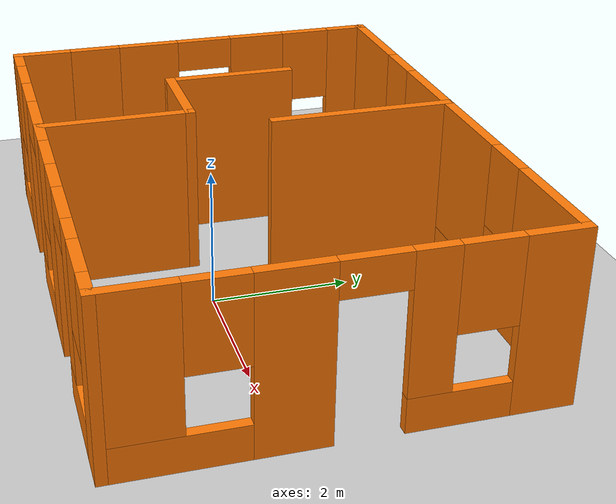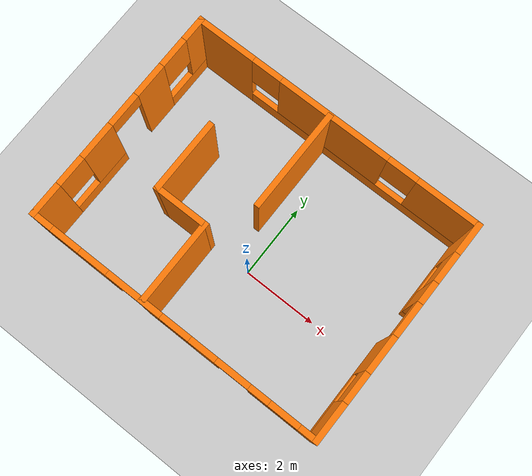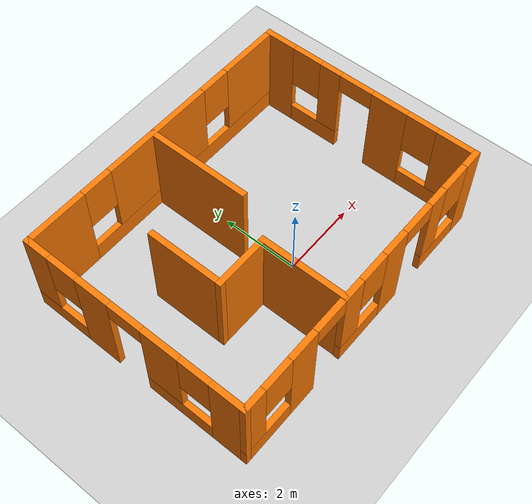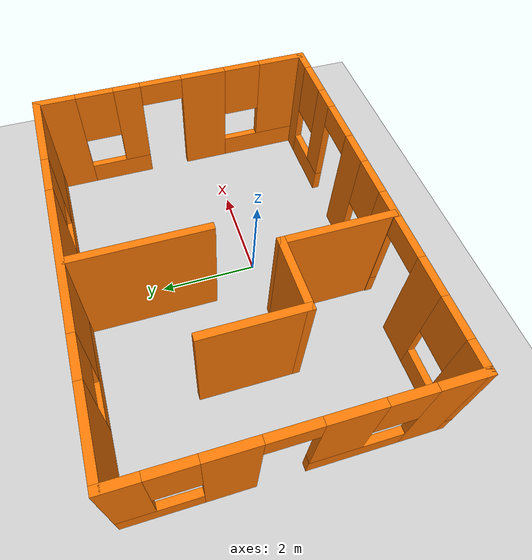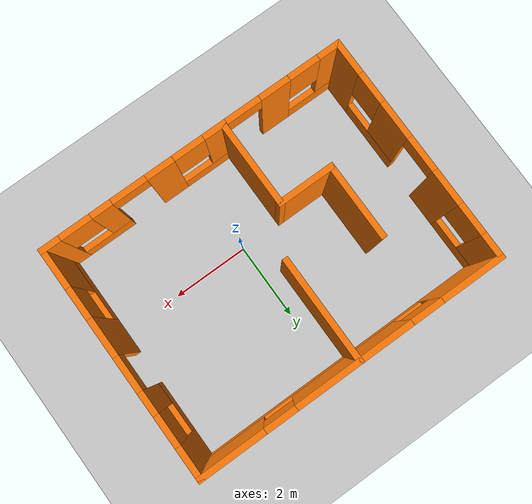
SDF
<sdf version="1.6">
 <world name="default">
  <light name="sun" type="directional">
   <pose>0 0 10 0 -0 0</pose>
   <diffuse>0.8 0.8 0.8 1</diffuse>
   <specular>0.2 0.2 0.2 1</specular>
   <attenuation>
    <range>1000</range>
    <constant>0.9</constant>
    <linear>0.01</linear>
    <quadratic>0.001</quadratic>
   </attenuation>
   <direction>-0.5 0.1 -0.9</direction>
  </light>
  <model name="ground_plane">
   <static>1</static>
   <link name="link">
    <collision name="collision">
     <geometry><plane><normal>0 0 1</normal><size>100 100</size></plane></geometry>
     <surface><friction><ode><mu>100</mu><mu2>50</mu2></ode></friction></surface>
    </collision>
    <visual name="visual">
     <cast_shadows>0</cast_shadows>
     <geometry><plane><normal>0 0 1</normal><size>100 100</size></plane></geometry>
     <material>
      <script><uri>file://media/materials/scripts/gazebo.material</uri><name>Gazebo/Grey</name></script>
     </material>
    </visual>
   </link>
  </model>
  <gravity>0 0 -9.8</gravity>
  <magnetic_field>6e-06 2.3e-05 -4.2e-05</magnetic_field>
  <atmosphere type="adiabatic"/>
  <physics name="default_physics" default="0" type="ode">
   <max_step_size>0.001</max_step_size>
   <real_time_factor>1</real_time_factor>
   <real_time_update_rate>1000</real_time_update_rate>
  </physics>
  <scene><ambient>0.4 0.4 0.4 1</ambient><background>0.7 0.7 0.7 1</background><shadows>1</shadows></scene>
  <spherical_coordinates>
   <surface_model>EARTH_WGS84</surface_model>
   <latitude_deg>0</latitude_deg>
   <longitude_deg>0</longitude_deg>
   <elevation>0</elevation>
   <heading_deg>0</heading_deg>
  </spherical_coordinates>
  <model name="mywold">
   <pose>-0.3363 0.745488 0 0 -0 0</pose>
   <link name="Wall_0">
    <pose>-3.925 0 0 0 -0 1.5708</pose>
    <visual name="Wall_0_Visual_0">
     <pose>-2.54206 0 1.25 0 -0 0</pose>
     <geometry><box><size>0.915881 0.15 2.5</size></box></geometry>
     <material>
      <script><uri>file://media/materials/scripts/gazebo.material</uri><name>Gazebo/Grey</name></script>
      <ambient>0.996078 0.47451 0.0196078 1</ambient>
     </material>
     <meta><layer>0</layer></meta>
    </visual>
    <collision name="Wall_0_Collision_0">
     <geometry><box><size>0.915881 0.15 2.5</size></box></geometry>
     <pose>-2.54206 0 1.25 0 -0 0</pose>
    </collision>
    <visual name="Wall_0_Visual_1">
     <pose>1.05257 0 1.25 0 -0 0</pose>
     <geometry><box><size>0.913386 0.15 2.5</size></box></geometry>
     <material>
      <script><uri>file://media/materials/scripts/gazebo.material</uri><name>Gazebo/Grey</name></script>
      <ambient>0.996078 0.47451 0.0196078 1</ambient>
     </material>
     <meta><layer>0</layer></meta>
    </visual>
    <collision name="Wall_0_Collision_1">
     <geometry><box><size>0.913386 0.15 2.5</size></box></geometry>
     <pose>1.05257 0 1.25 0 -0 0</pose>
    </collision>
    <visual name="Wall_0_Visual_2">
     <pose>-1.19412 0 0.25 0 -0 0</pose>
     <geometry><box><size>1.78 0.15 0.5</size></box></geometry>
     <material>
      <script><uri>file://media/materials/scripts/gazebo.material</uri><name>Gazebo/Grey</name></script>
      <ambient>0.996078 0.47451 0.0196078 1</ambient>
     </material>
     <meta><layer>0</layer></meta>
    </visual>
    <collision name="Wall_0_Collision_2">
     <geometry><box><size>1.78 0.15 0.5</size></box></geometry>
     <pose>-1.19412 0 0.25 0 -0 0</pose>
    </collision>
    <visual name="Wall_0_Visual_3">
     <pose>2.25463 0 0.25 0 -0 0</pose>
     <geometry><box><size>1.49073 0.15 0.5</size></box></geometry>
     <material>
      <script><uri>file://media/materials/scripts/gazebo.material</uri><name>Gazebo/Grey</name></script>
      <ambient>0.996078 0.47451 0.0196078 1</ambient>
     </material>
     <meta><layer>0</layer></meta>
    </visual>
    <collision name="Wall_0_Collision_3">
     <geometry><box><size>1.49073 0.15 0.5</size></box></geometry>
     <pose>2.25463 0 0.25 0 -0 0</pose>
    </collision>
    <visual name="Wall_0_Visual_4">
     <pose>-0.79412 0 1.5 0 -0 0</pose>
     <geometry><box><size>0.98 0.15 2</size></box></geometry>
     <material>
      <script><uri>file://media/materials/scripts/gazebo.material</uri><name>Gazebo/Grey</name></script>
      <ambient>0.996078 0.47451 0.0196078 1</ambient>
     </material>
     <meta><layer>0</layer></meta>
    </visual>
    <collision name="Wall_0_Collision_4">
     <geometry><box><size>0.98 0.15 2</size></box></geometry>
     <pose>-0.79412 0 1.5 0 -0 0</pose>
    </collision>
    <visual name="Wall_0_Visual_5">
     <pose>-0.79412 0 1.5 0 -0 0</pose>
     <geometry><box><size>0.98 0.15 2</size></box></geometry>
     <material>
      <script><uri>file://media/materials/scripts/gazebo.material</uri><name>Gazebo/Grey</name></script>
      <ambient>0.996078 0.47451 0.0196078 1</ambient>
     </material>
     <meta><layer>0</layer></meta>
    </visual>
    <collision name="Wall_0_Collision_5">
     <geometry><box><size>0.98 0.15 2</size></box></geometry>
     <pose>-0.79412 0 1.5 0 -0 0</pose>
    </collision>
    <visual name="Wall_0_Visual_6">
     <pose>2.65463 0 1.5 0 -0 0</pose>
     <geometry><box><size>0.690734 0.15 2</size></box></geometry>
     <material>
      <script><uri>file://media/materials/scripts/gazebo.material</uri><name>Gazebo/Grey</name></script>
      <ambient>0.996078 0.47451 0.0196078 1</ambient>
     </material>
     <meta><layer>0</layer></meta>
    </visual>
    <collision name="Wall_0_Collision_6">
     <geometry><box><size>0.690734 0.15 2</size></box></geometry>
     <pose>2.65463 0 1.5 0 -0 0</pose>
    </collision>
    <visual name="Wall_0_Visual_7">
     <pose>-1.68412 0 1.9 0 -0 0</pose>
     <geometry><box><size>0.8 0.15 1.2</size></box></geometry>
     <material>
      <script><uri>file://media/materials/scripts/gazebo.material</uri><name>Gazebo/Grey</name></script>
      <ambient>0.996078 0.47451 0.0196078 1</ambient>
     </material>
     <meta><layer>0</layer></meta>
    </visual>
    <collision name="Wall_0_Collision_7">
     <geometry><box><size>0.8 0.15 1.2</size></box></geometry>
     <pose>-1.68412 0 1.9 0 -0 0</pose>
    </collision>
    <visual name="Wall_0_Visual_8">
     <pose>1.90927 0 1.9 0 -0 0</pose>
     <geometry><box><size>0.8 0.15 1.2</size></box></geometry>
     <material>
      <script><uri>file://media/materials/scripts/gazebo.material</uri><name>Gazebo/Grey</name></script>
      <ambient>0.996078 0.47451 0.0196078 1</ambient>
     </material>
     <meta><layer>0</layer></meta>
    </visual>
    <collision name="Wall_0_Collision_8">
     <geometry><box><size>0.8 0.15 1.2</size></box></geometry>
     <pose>1.90927 0 1.9 0 -0 0</pose>
    </collision>
    <visual name="Wall_0_Visual_9">
     <pose>0.14588 0 2.25 0 -0 0</pose>
     <geometry><box><size>0.9 0.15 0.5</size></box></geometry>
     <material>
      <script><uri>file://media/materials/scripts/gazebo.material</uri><name>Gazebo/Grey</name></script>
      <ambient>0.996078 0.47451 0.0196078 1</ambient>
     </material>
     <meta><layer>0</layer></meta>
    </visual>
    <collision name="Wall_0_Collision_9">
     <geometry><box><size>0.9 0.15 0.5</size></box></geometry>
     <pose>0.14588 0 2.25 0 -0 0</pose>
    </collision>
    <visual name="Wall_0_Visual_10">
     <pose>0.14588 0 2.25 0 -0 0</pose>
     <geometry><box><size>0.9 0.15 0.5</size></box></geometry>
     <material>
      <script><uri>file://media/materials/scripts/gazebo.material</uri><name>Gazebo/Grey</name></script>
      <ambient>0.996078 0.47451 0.0196078 1</ambient>
     </material>
     <meta><layer>0</layer></meta>
    </visual>
    <collision name="Wall_0_Collision_10">
     <geometry><box><size>0.9 0.15 0.5</size></box></geometry>
     <pose>0.14588 0 2.25 0 -0 0</pose>
    </collision>
   </link>
   <link name="Wall_1">
    <pose>0 2.925 0 0 -0 0</pose>
    <visual name="Wall_1_Visual_0">
     <pose>-3.17832 0 1.25 0 -0 0</pose>
     <geometry><box><size>1.64336 0.15 2.5</size></box></geometry>
     <material>
      <script><uri>file://media/materials/scripts/gazebo.material</uri><name>Gazebo/Grey</name></script>
      <ambient>0.996078 0.47451 0.0196078 1</ambient>
     </material>
     <meta><layer>0</layer></meta>
    </visual>
    <collision name="Wall_1_Collision_0">
     <geometry><box><size>1.64336 0.15 2.5</size></box></geometry>
     <pose>-3.17832 0 1.25 0 -0 0</pose>
    </collision>
    <visual name="Wall_1_Visual_1">
     <pose>0.821679 0 0.25 0 -0 0</pose>
     <geometry><box><size>6.35664 0.15 0.5</size></box></geometry>
     <material>
      <script><uri>file://media/materials/scripts/gazebo.material</uri><name>Gazebo/Grey</name></script>
      <ambient>0.996078 0.47451 0.0196078 1</ambient>
     </material>
     <meta><layer>0</layer></meta>
    </visual>
    <collision name="Wall_1_Collision_1">
     <geometry><box><size>6.35664 0.15 0.5</size></box></geometry>
     <pose>0.821679 0 0.25 0 -0 0</pose>
    </collision>
    <visual name="Wall_1_Visual_2">
     <pose>-0.041479 0 1.5 0 -0 0</pose>
     <geometry><box><size>3.03032 0.15 2</size></box></geometry>
     <material>
      <script><uri>file://media/materials/scripts/gazebo.material</uri><name>Gazebo/Grey</name></script>
      <ambient>0.996078 0.47451 0.0196078 1</ambient>
     </material>
     <meta><layer>0</layer></meta>
    </visual>
    <collision name="Wall_1_Collision_2">
     <geometry><box><size>3.03032 0.15 2</size></box></geometry>
     <pose>-0.041479 0 1.5 0 -0 0</pose>
    </collision>
    <visual name="Wall_1_Visual_3">
     <pose>3.13684 0 1.5 0 -0 0</pose>
     <geometry><box><size>1.72632 0.15 2</size></box></geometry>
     <material>
      <script><uri>file://media/materials/scripts/gazebo.material</uri><name>Gazebo/Grey</name></script>
      <ambient>0.996078 0.47451 0.0196078 1</ambient>
     </material>
     <meta><layer>0</layer></meta>
    </visual>
    <collision name="Wall_1_Collision_3">
     <geometry><box><size>1.72632 0.15 2</size></box></geometry>
     <pose>3.13684 0 1.5 0 -0 0</pose>
    </collision>
    <visual name="Wall_1_Visual_4">
     <pose>-1.95664 0 1.9 0 -0 0</pose>
     <geometry><box><size>0.8 0.15 1.2</size></box></geometry>
     <material>
      <script><uri>file://media/materials/scripts/gazebo.material</uri><name>Gazebo/Grey</name></script>
      <ambient>0.996078 0.47451 0.0196078 1</ambient>
     </material>
     <meta><layer>0</layer></meta>
    </visual>
    <collision name="Wall_1_Collision_4">
     <geometry><box><size>0.8 0.15 1.2</size></box></geometry>
     <pose>-1.95664 0 1.9 0 -0 0</pose>
    </collision>
    <visual name="Wall_1_Visual_5">
     <pose>1.87368 0 1.9 0 -0 0</pose>
     <geometry><box><size>0.8 0.15 1.2</size></box></geometry>
     <material>
      <script><uri>file://media/materials/scripts/gazebo.material</uri><name>Gazebo/Grey</name></script>
      <ambient>0.996078 0.47451 0.0196078 1</ambient>
     </material>
     <meta><layer>0</layer></meta>
    </visual>
    <collision name="Wall_1_Collision_5">
     <geometry><box><size>0.8 0.15 1.2</size></box></geometry>
     <pose>1.87368 0 1.9 0 -0 0</pose>
    </collision>
   </link>
   <link name="Wall_2">
    <pose>3.925 0 0 0 0 -1.5708</pose>
    <visual name="Wall_2_Visual_0">
     <pose>-2.56294 0 1.25 0 -0 0</pose>
     <geometry><box><size>0.874119 0.15 2.5</size></box></geometry>
     <material>
      <script><uri>file://media/materials/scripts/gazebo.material</uri><name>Gazebo/Grey</name></script>
      <ambient>0.996078 0.47451 0.0196078 1</ambient>
     </material>
     <meta><layer>0</layer></meta>
    </visual>
    <collision name="Wall_2_Collision_0">
     <geometry><box><size>0.874119 0.15 2.5</size></box></geometry>
     <pose>-2.56294 0 1.25 0 -0 0</pose>
    </collision>
    <visual name="Wall_2_Visual_1">
     <pose>0.644119 0 1.25 0 -0 0</pose>
     <geometry><box><size>0.98 0.15 2.5</size></box></geometry>
     <material>
      <script><uri>file://media/materials/scripts/gazebo.material</uri><name>Gazebo/Grey</name></script>
      <ambient>0.996078 0.47451 0.0196078 1</ambient>
     </material>
     <meta><layer>0</layer></meta>
    </visual>
    <collision name="Wall_2_Collision_1">
     <geometry><box><size>0.98 0.15 2.5</size></box></geometry>
     <pose>0.644119 0 1.25 0 -0 0</pose>
    </collision>
    <visual name="Wall_2_Visual_2">
     <pose>-1.43588 0 0.25 0 -0 0</pose>
     <geometry><box><size>1.38 0.15 0.5</size></box></geometry>
     <material>
      <script><uri>file://media/materials/scripts/gazebo.material</uri><name>Gazebo/Grey</name></script>
      <ambient>0.996078 0.47451 0.0196078 1</ambient>
     </material>
     <meta><layer>0</layer></meta>
    </visual>
    <collision name="Wall_2_Collision_2">
     <geometry><box><size>1.38 0.15 0.5</size></box></geometry>
     <pose>-1.43588 0 0.25 0 -0 0</pose>
    </collision>
    <visual name="Wall_2_Visual_3">
     <pose>2.06706 0 0.25 0 -0 0</pose>
     <geometry><box><size>1.86588 0.15 0.5</size></box></geometry>
     <material>
      <script><uri>file://media/materials/scripts/gazebo.material</uri><name>Gazebo/Grey</name></script>
      <ambient>0.996078 0.47451 0.0196078 1</ambient>
     </material>
     <meta><layer>0</layer></meta>
    </visual>
    <collision name="Wall_2_Collision_3">
     <geometry><box><size>1.86588 0.15 0.5</size></box></geometry>
     <pose>2.06706 0 0.25 0 -0 0</pose>
    </collision>
    <visual name="Wall_2_Visual_4">
     <pose>-1.03588 0 1.5 0 -0 0</pose>
     <geometry><box><size>0.58 0.15 2</size></box></geometry>
     <material>
      <script><uri>file://media/materials/scripts/gazebo.material</uri><name>Gazebo/Grey</name></script>
      <ambient>0.996078 0.47451 0.0196078 1</ambient>
     </material>
     <meta><layer>0</layer></meta>
    </visual>
    <collision name="Wall_2_Collision_4">
     <geometry><box><size>0.58 0.15 2</size></box></geometry>
     <pose>-1.03588 0 1.5 0 -0 0</pose>
    </collision>
    <visual name="Wall_2_Visual_5">
     <pose>-1.03588 0 1.5 0 -0 0</pose>
     <geometry><box><size>0.58 0.15 2</size></box></geometry>
     <material>
      <script><uri>file://media/materials/scripts/gazebo.material</uri><name>Gazebo/Grey</name></script>
      <ambient>0.996078 0.47451 0.0196078 1</ambient>
     </material>
     <meta><layer>0</layer></meta>
    </visual>
    <collision name="Wall_2_Collision_5">
     <geometry><box><size>0.58 0.15 2</size></box></geometry>
     <pose>-1.03588 0 1.5 0 -0 0</pose>
    </collision>
    <visual name="Wall_2_Visual_6">
     <pose>2.46706 0 1.5 0 -0 0</pose>
     <geometry><box><size>1.06588 0.15 2</size></box></geometry>
     <material>
      <script><uri>file://media/materials/scripts/gazebo.material</uri><name>Gazebo/Grey</name></script>
      <ambient>0.996078 0.47451 0.0196078 1</ambient>
     </material>
     <meta><layer>0</layer></meta>
    </visual>
    <collision name="Wall_2_Collision_6">
     <geometry><box><size>1.06588 0.15 2</size></box></geometry>
     <pose>2.46706 0 1.5 0 -0 0</pose>
    </collision>
    <visual name="Wall_2_Visual_7">
     <pose>-1.72588 0 1.9 0 -0 0</pose>
     <geometry><box><size>0.8 0.15 1.2</size></box></geometry>
     <material>
      <script><uri>file://media/materials/scripts/gazebo.material</uri><name>Gazebo/Grey</name></script>
      <ambient>0.996078 0.47451 0.0196078 1</ambient>
     </material>
     <meta><layer>0</layer></meta>
    </visual>
    <collision name="Wall_2_Collision_7">
     <geometry><box><size>0.8 0.15 1.2</size></box></geometry>
     <pose>-1.72588 0 1.9 0 -0 0</pose>
    </collision>
    <visual name="Wall_2_Visual_8">
     <pose>1.53412 0 1.9 0 -0 0</pose>
     <geometry><box><size>0.8 0.15 1.2</size></box></geometry>
     <material>
      <script><uri>file://media/materials/scripts/gazebo.material</uri><name>Gazebo/Grey</name></script>
      <ambient>0.996078 0.47451 0.0196078 1</ambient>
     </material>
     <meta><layer>0</layer></meta>
    </visual>
    <collision name="Wall_2_Collision_8">
     <geometry><box><size>0.8 0.15 1.2</size></box></geometry>
     <pose>1.53412 0 1.9 0 -0 0</pose>
    </collision>
    <visual name="Wall_2_Visual_9">
     <pose>-0.295881 0 2.25 0 -0 0</pose>
     <geometry><box><size>0.9 0.15 0.5</size></box></geometry>
     <material>
      <script><uri>file://media/materials/scripts/gazebo.material</uri><name>Gazebo/Grey</name></script>
      <ambient>0.996078 0.47451 0.0196078 1</ambient>
     </material>
     <meta><layer>0</layer></meta>
    </visual>
    <collision name="Wall_2_Collision_9">
     <geometry><box><size>0.9 0.15 0.5</size></box></geometry>
     <pose>-0.295881 0 2.25 0 -0 0</pose>
    </collision>
    <visual name="Wall_2_Visual_10">
     <pose>-0.295881 0 2.25 0 -0 0</pose>
     <geometry><box><size>0.9 0.15 0.5</size></box></geometry>
     <material>
      <script><uri>file://media/materials/scripts/gazebo.material</uri><name>Gazebo/Grey</name></script>
      <ambient>0.996078 0.47451 0.0196078 1</ambient>
     </material>
     <meta><layer>0</layer></meta>
    </visual>
    <collision name="Wall_2_Collision_10">
     <geometry><box><size>0.9 0.15 0.5</size></box></geometry>
     <pose>-0.295881 0 2.25 0 -0 0</pose>
    </collision>
   </link>
   <link name="Wall_3">
    <pose>0 -2.925 0 0 -0 3.14159</pose>
    <visual name="Wall_3_Visual_0">
     <pose>-3.73798 0 1.25 0 -0 0</pose>
     <geometry><box><size>0.524035 0.15 2.5</size></box></geometry>
     <material>
      <script><uri>file://media/materials/scripts/gazebo.material</uri><name>Gazebo/Grey</name></script>
      <ambient>0.996078 0.47451 0.0196078 1</ambient>
     </material>
     <meta><layer>0</layer></meta>
    </visual>
    <collision name="Wall_3_Collision_0">
     <geometry><box><size>0.524035 0.15 2.5</size></box></geometry>
     <pose>-3.73798 0 1.25 0 -0 0</pose>
    </collision>
    <visual name="Wall_3_Visual_1">
     <pose>-0.875965 0 1.25 0 -0 0</pose>
     <geometry><box><size>0.72 0.15 2.5</size></box></geometry>
     <material>
      <script><uri>file://media/materials/scripts/gazebo.material</uri><name>Gazebo/Grey</name></script>
      <ambient>0.996078 0.47451 0.0196078 1</ambient>
     </material>
     <meta><layer>0</layer></meta>
    </visual>
    <collision name="Wall_3_Collision_1">
     <geometry><box><size>0.72 0.15 2.5</size></box></geometry>
     <pose>-0.875965 0 1.25 0 -0 0</pose>
    </collision>
    <visual name="Wall_3_Visual_2">
     <pose>2.18904 0 1.25 0 -0 0</pose>
     <geometry><box><size>0.79 0.15 2.5</size></box></geometry>
     <material>
      <script><uri>file://media/materials/scripts/gazebo.material</uri><name>Gazebo/Grey</name></script>
      <ambient>0.996078 0.47451 0.0196078 1</ambient>
     </material>
     <meta><layer>0</layer></meta>
    </visual>
    <collision name="Wall_3_Collision_2">
     <geometry><box><size>0.79 0.15 2.5</size></box></geometry>
     <pose>2.18904 0 1.25 0 -0 0</pose>
    </collision>
    <visual name="Wall_3_Visual_3">
     <pose>-2.80597 0 0.25 0 -0 0</pose>
     <geometry><box><size>1.34 0.15 0.5</size></box></geometry>
     <material>
      <script><uri>file://media/materials/scripts/gazebo.material</uri><name>Gazebo/Grey</name></script>
      <ambient>0.996078 0.47451 0.0196078 1</ambient>
     </material>
     <meta><layer>0</layer></meta>
    </visual>
    <collision name="Wall_3_Collision_3">
     <geometry><box><size>1.34 0.15 0.5</size></box></geometry>
     <pose>-2.80597 0 0.25 0 -0 0</pose>
    </collision>
    <visual name="Wall_3_Visual_4">
     <pose>0.189035 0 0.25 0 -0 0</pose>
     <geometry><box><size>1.41 0.15 0.5</size></box></geometry>
     <material>
      <script><uri>file://media/materials/scripts/gazebo.material</uri><name>Gazebo/Grey</name></script>
      <ambient>0.996078 0.47451 0.0196078 1</ambient>
     </material>
     <meta><layer>0</layer></meta>
    </visual>
    <collision name="Wall_3_Collision_4">
     <geometry><box><size>1.41 0.15 0.5</size></box></geometry>
     <pose>0.189035 0 0.25 0 -0 0</pose>
    </collision>
    <visual name="Wall_3_Visual_5">
     <pose>3.29202 0 0.25 0 -0 0</pose>
     <geometry><box><size>1.41596 0.15 0.5</size></box></geometry>
     <material>
      <script><uri>file://media/materials/scripts/gazebo.material</uri><name>Gazebo/Grey</name></script>
      <ambient>0.996078 0.47451 0.0196078 1</ambient>
     </material>
     <meta><layer>0</layer></meta>
    </visual>
    <collision name="Wall_3_Collision_5">
     <geometry><box><size>1.41596 0.15 0.5</size></box></geometry>
     <pose>3.29202 0 0.25 0 -0 0</pose>
    </collision>
    <visual name="Wall_3_Visual_6">
     <pose>-2.40597 0 1.5 0 -0 0</pose>
     <geometry><box><size>0.54 0.15 2</size></box></geometry>
     <material>
      <script><uri>file://media/materials/scripts/gazebo.material</uri><name>Gazebo/Grey</name></script>
      <ambient>0.996078 0.47451 0.0196078 1</ambient>
     </material>
     <meta><layer>0</layer></meta>
    </visual>
    <collision name="Wall_3_Collision_6">
     <geometry><box><size>0.54 0.15 2</size></box></geometry>
     <pose>-2.40597 0 1.5 0 -0 0</pose>
    </collision>
    <visual name="Wall_3_Visual_7">
     <pose>-2.40597 0 1.5 0 -0 0</pose>
     <geometry><box><size>0.54 0.15 2</size></box></geometry>
     <material>
      <script><uri>file://media/materials/scripts/gazebo.material</uri><name>Gazebo/Grey</name></script>
      <ambient>0.996078 0.47451 0.0196078 1</ambient>
     </material>
     <meta><layer>0</layer></meta>
    </visual>
    <collision name="Wall_3_Collision_7">
     <geometry><box><size>0.54 0.15 2</size></box></geometry>
     <pose>-2.40597 0 1.5 0 -0 0</pose>
    </collision>
    <visual name="Wall_3_Visual_8">
     <pose>0.589035 0 1.5 0 -0 0</pose>
     <geometry><box><size>0.61 0.15 2</size></box></geometry>
     <material>
      <script><uri>file://media/materials/scripts/gazebo.material</uri><name>Gazebo/Grey</name></script>
      <ambient>0.996078 0.47451 0.0196078 1</ambient>
     </material>
     <meta><layer>0</layer></meta>
    </visual>
    <collision name="Wall_3_Collision_8">
     <geometry><box><size>0.61 0.15 2</size></box></geometry>
     <pose>0.589035 0 1.5 0 -0 0</pose>
    </collision>
    <visual name="Wall_3_Visual_9">
     <pose>0.589035 0 1.5 0 -0 0</pose>
     <geometry><box><size>0.61 0.15 2</size></box></geometry>
     <material>
      <script><uri>file://media/materials/scripts/gazebo.material</uri><name>Gazebo/Grey</name></script>
      <ambient>0.996078 0.47451 0.0196078 1</ambient>
     </material>
     <meta><layer>0</layer></meta>
    </visual>
    <collision name="Wall_3_Collision_9">
     <geometry><box><size>0.61 0.15 2</size></box></geometry>
     <pose>0.589035 0 1.5 0 -0 0</pose>
    </collision>
    <visual name="Wall_3_Visual_10">
     <pose>3.69202 0 1.5 0 -0 0</pose>
     <geometry><box><size>0.615965 0.15 2</size></box></geometry>
     <material>
      <script><uri>file://media/materials/scripts/gazebo.material</uri><name>Gazebo/Grey</name></script>
      <ambient>0.996078 0.47451 0.0196078 1</ambient>
     </material>
     <meta><layer>0</layer></meta>
    </visual>
    <collision name="Wall_3_Collision_10">
     <geometry><box><size>0.615965 0.15 2</size></box></geometry>
     <pose>3.69202 0 1.5 0 -0 0</pose>
    </collision>
    <visual name="Wall_3_Visual_11">
     <pose>-3.07597 0 1.9 0 -0 0</pose>
     <geometry><box><size>0.8 0.15 1.2</size></box></geometry>
     <material>
      <script><uri>file://media/materials/scripts/gazebo.material</uri><name>Gazebo/Grey</name></script>
      <ambient>0.996078 0.47451 0.0196078 1</ambient>
     </material>
     <meta><layer>0</layer></meta>
    </visual>
    <collision name="Wall_3_Collision_11">
     <geometry><box><size>0.8 0.15 1.2</size></box></geometry>
     <pose>-3.07597 0 1.9 0 -0 0</pose>
    </collision>
    <visual name="Wall_3_Visual_12">
     <pose>-0.115965 0 1.9 0 -0 0</pose>
     <geometry><box><size>0.8 0.15 1.2</size></box></geometry>
     <material>
      <script><uri>file://media/materials/scripts/gazebo.material</uri><name>Gazebo/Grey</name></script>
      <ambient>0.996078 0.47451 0.0196078 1</ambient>
     </material>
     <meta><layer>0</layer></meta>
    </visual>
    <collision name="Wall_3_Collision_12">
     <geometry><box><size>0.8 0.15 1.2</size></box></geometry>
     <pose>-0.115965 0 1.9 0 -0 0</pose>
    </collision>
    <visual name="Wall_3_Visual_13">
     <pose>2.98403 0 1.9 0 -0 0</pose>
     <geometry><box><size>0.8 0.15 1.2</size></box></geometry>
     <material>
      <script><uri>file://media/materials/scripts/gazebo.material</uri><name>Gazebo/Grey</name></script>
      <ambient>0.996078 0.47451 0.0196078 1</ambient>
     </material>
     <meta><layer>0</layer></meta>
    </visual>
    <collision name="Wall_3_Collision_13">
     <geometry><box><size>0.8 0.15 1.2</size></box></geometry>
     <pose>2.98403 0 1.9 0 -0 0</pose>
    </collision>
    <visual name="Wall_3_Visual_14">
     <pose>-1.68596 0 2.25 0 -0 0</pose>
     <geometry><box><size>0.9 0.15 0.5</size></box></geometry>
     <material>
      <script><uri>file://media/materials/scripts/gazebo.material</uri><name>Gazebo/Grey</name></script>
      <ambient>0.996078 0.47451 0.0196078 1</ambient>
     </material>
     <meta><layer>0</layer></meta>
    </visual>
    <collision name="Wall_3_Collision_14">
     <geometry><box><size>0.9 0.15 0.5</size></box></geometry>
     <pose>-1.68596 0 2.25 0 -0 0</pose>
    </collision>
    <visual name="Wall_3_Visual_15">
     <pose>-1.68596 0 2.25 0 -0 0</pose>
     <geometry><box><size>0.9 0.15 0.5</size></box></geometry>
     <material>
      <script><uri>file://media/materials/scripts/gazebo.material</uri><name>Gazebo/Grey</name></script>
      <ambient>0.996078 0.47451 0.0196078 1</ambient>
     </material>
     <meta><layer>0</layer></meta>
    </visual>
    <collision name="Wall_3_Collision_15">
     <geometry><box><size>0.9 0.15 0.5</size></box></geometry>
     <pose>-1.68596 0 2.25 0 -0 0</pose>
    </collision>
    <visual name="Wall_3_Visual_16">
     <pose>1.34404 0 2.25 0 -0 0</pose>
     <geometry><box><size>0.9 0.15 0.5</size></box></geometry>
     <material>
      <script><uri>file://media/materials/scripts/gazebo.material</uri><name>Gazebo/Grey</name></script>
      <ambient>0.996078 0.47451 0.0196078 1</ambient>
     </material>
     <meta><layer>0</layer></meta>
    </visual>
    <collision name="Wall_3_Collision_16">
     <geometry><box><size>0.9 0.15 0.5</size></box></geometry>
     <pose>1.34404 0 2.25 0 -0 0</pose>
    </collision>
    <visual name="Wall_3_Visual_17">
     <pose>1.34404 0 2.25 0 -0 0</pose>
     <geometry><box><size>0.9 0.15 0.5</size></box></geometry>
     <material>
      <script><uri>file://media/materials/scripts/gazebo.material</uri><name>Gazebo/Grey</name></script>
      <ambient>0.996078 0.47451 0.0196078 1</ambient>
     </material>
     <meta><layer>0</layer></meta>
    </visual>
    <collision name="Wall_3_Collision_17">
     <geometry><box><size>0.9 0.15 0.5</size></box></geometry>
     <pose>1.34404 0 2.25 0 -0 0</pose>
    </collision>
   </link>
   <link name="Wall_5">
    <collision name="Wall_5_Collision">
     <geometry><box><size>2.25 0.15 2.5</size></box></geometry>
     <pose>0 0 1.25 0 -0 0</pose>
    </collision>
    <visual name="Wall_5_Visual">
     <pose>0 0 1.25 0 -0 0</pose>
     <geometry><box><size>2.25 0.15 2.5</size></box></geometry>
     <material>
      <script><uri>file://media/materials/scripts/gazebo.material</uri><name>Gazebo/Grey</name></script>
      <ambient>0.996078 0.47451 0.0196078 1</ambient>
     </material>
     <meta><layer>0</layer></meta>
    </visual>
    <pose>-0.807 -1.83222 0 0 -0 1.5708</pose>
   </link>
   <link name="Wall_6">
    <collision name="Wall_6_Collision">
     <geometry><box><size>1.5 0.15 2.5</size></box></geometry>
     <pose>0 0 1.25 0 -0 0</pose>
    </collision>
    <visual name="Wall_6_Visual">
     <pose>0 0 1.25 0 -0 0</pose>
     <geometry><box><size>1.5 0.15 2.5</size></box></geometry>
     <material>
      <script><uri>file://media/materials/scripts/gazebo.material</uri><name>Gazebo/Grey</name></script>
      <ambient>0.996078 0.47451 0.0196078 1</ambient>
     </material>
     <meta><layer>0</layer></meta>
    </visual>
    <pose>-1.482 -0.782225 0 0 -0 3.14159</pose>
   </link>
   <link name="Wall_7">
    <collision name="Wall_7_Collision">
     <geometry><box><size>2 0.15 2.5</size></box></geometry>
     <pose>0 0 1.25 0 -0 0</pose>
    </collision>
    <visual name="Wall_7_Visual">
     <pose>0 0 1.25 0 -0 0</pose>
     <geometry><box><size>2 0.15 2.5</size></box></geometry>
     <material>
      <script><uri>file://media/materials/scripts/gazebo.material</uri><name>Gazebo/Grey</name></script>
      <ambient>0.996078 0.47451 0.0196078 1</ambient>
     </material>
     <meta><layer>0</layer></meta>
    </visual>
    <pose>-2.157 0.142775 0 0 -0 1.5708</pose>
   </link>
   <link name="Wall_9">
    <collision name="Wall_9_Collision">
     <geometry><box><size>2.75 0.15 2.5</size></box></geometry>
     <pose>0 0 1.25 0 -0 0</pose>
    </collision>
    <visual name="Wall_9_Visual">
     <pose>0 0 1.25 0 -0 0</pose>
     <geometry><box><size>2.75 0.15 2.5</size></box></geometry>
     <material>
      <script><uri>file://media/materials/scripts/gazebo.material</uri><name>Gazebo/Grey</name></script>
      <ambient>0.996078 0.47451 0.0196078 1</ambient>
     </material>
     <meta><layer>0</layer></meta>
    </visual>
    <pose>-0.1722 1.61033 0 0 0 -1.5708</pose>
   </link>
   <static>1</static>
  </model>
  <plugin filename="libcollision_map_creator.so" name="collision_map_creator"/>
 </world>
</sdf>
